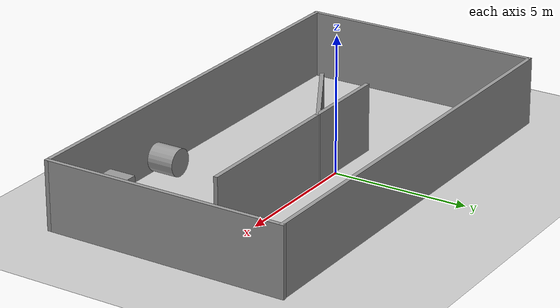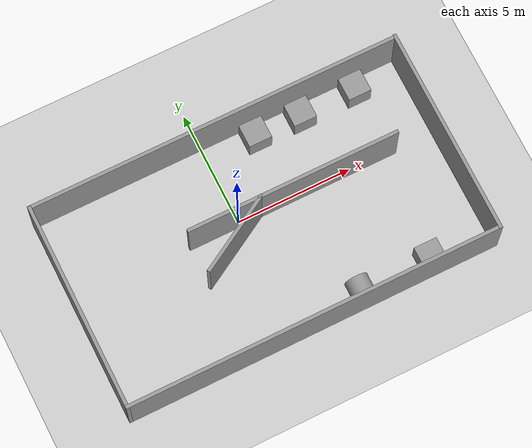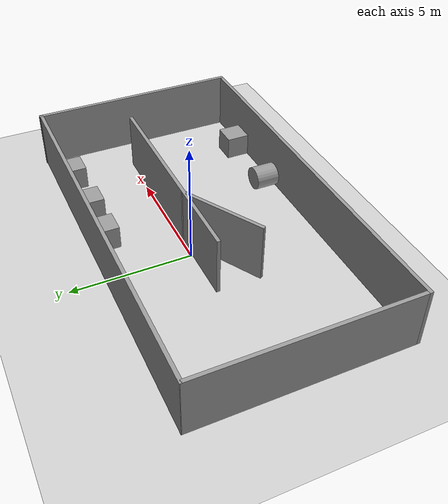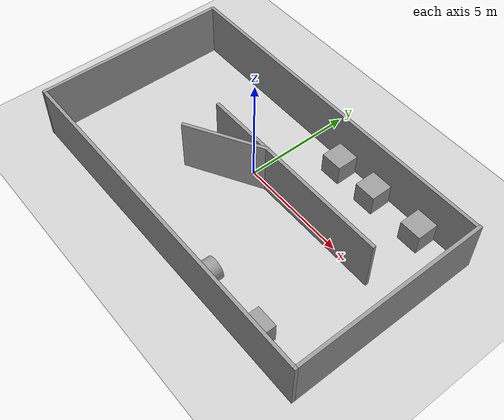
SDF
<sdf version="1.7">
 <world name="default">
  <light name="sun" type="directional">
   <pose>0 0 10 0 -0 0</pose>
   <diffuse>0.8 0.8 0.8 1</diffuse>
   <specular>0.2 0.2 0.2 1</specular>
   <attenuation>
    <range>1000</range>
    <constant>0.9</constant>
    <linear>0.01</linear>
    <quadratic>0.001</quadratic>
   </attenuation>
   <direction>-0.5 0.1 -0.9</direction>
   <spot><inner_angle>0</inner_angle><outer_angle>0</outer_angle><falloff>0</falloff></spot>
  </light>
  <model name="ground_plane">
   <static>1</static>
   <link name="link">
    <collision name="collision">
     <geometry><plane><normal>0 0 1</normal><size>100 100</size></plane></geometry>
     <surface><friction><ode><mu>100</mu><mu2>50</mu2></ode></friction></surface>
    </collision>
    <visual name="visual">
     <cast_shadows>0</cast_shadows>
     <geometry><plane><normal>0 0 1</normal><size>100 100</size></plane></geometry>
     <material>
      <script><uri>file://media/materials/scripts/gazebo.material</uri><name>Gazebo/Grey</name></script>
     </material>
    </visual>
   </link>
  </model>
  <gravity>0 0 -9.8</gravity>
  <magnetic_field>6e-06 2.3e-05 -4.2e-05</magnetic_field>
  <atmosphere type="adiabatic"/>
  <physics type="ode">
   <max_step_size>0.001</max_step_size>
   <real_time_factor>1</real_time_factor>
   <real_time_update_rate>1000</real_time_update_rate>
  </physics>
  <scene><ambient>0.4 0.4 0.4 1</ambient><background>0.7 0.7 0.7 1</background><shadows>1</shadows></scene>
  <audio><device>default</device></audio>
  <spherical_coordinates>
   <surface_model>EARTH_WGS84</surface_model>
   <latitude_deg>0</latitude_deg>
   <longitude_deg>0</longitude_deg>
   <elevation>0</elevation>
   <heading_deg>0</heading_deg>
  </spherical_coordinates>
  <model name="dee">
   <pose>0.699239 -0.953391 0 0 -0 0</pose>
   <link name="Wall_0">
    <collision name="Wall_0_Collision">
     <geometry><box><size>16.25 0.15 2.5</size></box></geometry>
     <pose>0 0 1.25 0 -0 0</pose>
    </collision>
    <visual name="Wall_0_Visual">
     <pose>0 0 1.25 0 -0 0</pose>
     <geometry><box><size>16.25 0.15 2.5</size></box></geometry>
     <material>
      <script><uri>file://media/materials/scripts/gazebo.material</uri><name>Gazebo/Grey</name></script>
      <ambient>1 1 1 1</ambient>
     </material>
     <meta><layer>0</layer></meta>
    </visual>
    <pose>0 4.42251 0 0 -0 0</pose>
   </link>
   <link name="Wall_1">
    <collision name="Wall_1_Collision">
     <geometry><box><size>9.04822 0.15 2.5</size></box></geometry>
     <pose>0 0 1.25 0 -0 0</pose>
    </collision>
    <visual name="Wall_1_Visual">
     <pose>0 0 1.25 0 -0 0</pose>
     <geometry><box><size>9.04822 0.15 2.5</size></box></geometry>
     <material>
      <script><uri>file://media/materials/scripts/gazebo.material</uri><name>Gazebo/Grey</name></script>
      <ambient>1 1 1 1</ambient>
     </material>
     <meta><layer>0</layer></meta>
    </visual>
    <pose>8.05 0 0 0 -0 -1.5708</pose>
   </link>
   <link name="Wall_2">
    <collision name="Wall_2_Collision">
     <geometry><box><size>16.25 0.15 2.5</size></box></geometry>
     <pose>0 0 1.25 0 -0 0</pose>
    </collision>
    <visual name="Wall_2_Visual">
     <pose>0 0 1.25 0 -0 0</pose>
     <geometry><box><size>16.25 0.15 2.5</size></box></geometry>
     <material>
      <script><uri>file://media/materials/scripts/gazebo.material</uri><name>Gazebo/Grey</name></script>
      <ambient>1 1 1 1</ambient>
     </material>
     <meta><layer>0</layer></meta>
    </visual>
    <pose>0 -4.44911 0 0 -0 3.14159</pose>
   </link>
   <link name="Wall_3">
    <collision name="Wall_3_Collision">
     <geometry><box><size>9 0.15 2.5</size></box></geometry>
     <pose>0 0 1.25 0 -0 0</pose>
    </collision>
    <visual name="Wall_3_Visual">
     <pose>0 0 1.25 0 -0 0</pose>
     <geometry><box><size>9 0.15 2.5</size></box></geometry>
     <material>
      <script><uri>file://media/materials/scripts/gazebo.material</uri><name>Gazebo/Grey</name></script>
      <ambient>1 1 1 1</ambient>
     </material>
     <meta><layer>0</layer></meta>
    </visual>
    <pose>-8.05 -0.024108 0 0 -0 1.5708</pose>
   </link>
   <link name="Wall_5">
    <collision name="Wall_5_Collision">
     <geometry><box><size>9.25 0.15 2.5</size></box></geometry>
     <pose>0 0 1.25 0 -0 0</pose>
    </collision>
    <visual name="Wall_5_Visual">
     <pose>0 0 1.25 0 -0 0</pose>
     <geometry><box><size>9.25 0.15 2.5</size></box></geometry>
     <material>
      <script><uri>file://media/materials/scripts/gazebo.material</uri><name>Gazebo/Grey</name></script>
      <ambient>1 1 1 1</ambient>
     </material>
     <meta><layer>0</layer></meta>
    </visual>
    <pose>1.67895 0.815214 0 0 -0 3.14159</pose>
   </link>
   <link name="Wall_7">
    <collision name="Wall_7_Collision">
     <geometry><box><size>3.75 0.15 2.5</size></box></geometry>
     <pose>0 0 1.25 0 -0 0</pose>
    </collision>
    <visual name="Wall_7_Visual">
     <pose>0 0 1.25 0 -0 0</pose>
     <geometry><box><size>3.75 0.15 2.5</size></box></geometry>
     <material>
      <script><uri>file://media/materials/scripts/gazebo.material</uri><name>Gazebo/Grey</name></script>
      <ambient>1 1 1 1</ambient>
     </material>
     <meta><layer>0</layer></meta>
    </visual>
    <pose>-1.31029 -0.084786 0 0 -0 -2.61799</pose>
   </link>
   <static>1</static>
  </model>
  <model name="unit_box">
   <pose>6.66097 2.84802 0.499995 0 1e-05 0</pose>
   <link name="link">
    <inertial>
     <mass>1</mass>
     <inertia>
      <ixx>0.166667</ixx>
      <ixy>0</ixy>
      <ixz>0</ixz>
      <iyy>0.166667</iyy>
      <iyz>0</iyz>
      <izz>0.166667</izz>
     </inertia>
    </inertial>
    <collision name="collision"><geometry><box><size>1 1 1</size></box></geometry></collision>
    <visual name="visual">
     <geometry><box><size>1 1 1</size></box></geometry>
     <material>
      <script><name>Gazebo/Grey</name><uri>file://media/materials/scripts/gazebo.material</uri></script>
     </material>
    </visual>
   </link>
  </model>
  <model name="unit_box_0">
   <pose>4.18684 2.81982 0.499995 -1e-05 0 0</pose>
   <link name="link">
    <inertial>
     <mass>1</mass>
     <inertia>
      <ixx>0.166667</ixx>
      <ixy>0</ixy>
      <ixz>0</ixz>
      <iyy>0.166667</iyy>
      <iyz>0</iyz>
      <izz>0.166667</izz>
     </inertia>
    </inertial>
    <collision name="collision"><geometry><box><size>1 1 1</size></box></geometry></collision>
    <visual name="visual">
     <geometry><box><size>1 1 1</size></box></geometry>
     <material>
      <script><name>Gazebo/Grey</name><uri>file://media/materials/scripts/gazebo.material</uri></script>
     </material>
    </visual>
   </link>
  </model>
  <model name="unit_box_1">
   <pose>2.17801 2.84571 0.499995 0 1e-05 0</pose>
   <link name="link">
    <inertial>
     <mass>1</mass>
     <inertia>
      <ixx>0.166667</ixx>
      <ixy>0</ixy>
      <ixz>0</ixz>
      <iyy>0.166667</iyy>
      <iyz>0</iyz>
      <izz>0.166667</izz>
     </inertia>
    </inertial>
    <collision name="collision"><geometry><box><size>1 1 1</size></box></geometry></collision>
    <visual name="visual">
     <geometry><box><size>1 1 1</size></box></geometry>
     <material>
      <script><name>Gazebo/Grey</name><uri>file://media/materials/scripts/gazebo.material</uri></script>
     </material>
    </visual>
   </link>
  </model>
  <model name="unit_box_2">
   <pose>6.10722 -4.82751 0.5 -0 -0 -2e-06</pose>
   <link name="link">
    <inertial>
     <mass>1</mass>
     <inertia>
      <ixx>0.166667</ixx>
      <ixy>0</ixy>
      <ixz>0</ixz>
      <iyy>0.166667</iyy>
      <iyz>0</iyz>
      <izz>0.166667</izz>
     </inertia>
    </inertial>
    <collision name="collision"><geometry><box><size>1 1 1</size></box></geometry></collision>
    <visual name="visual">
     <geometry><box><size>1 1 1</size></box></geometry>
     <material>
      <script><name>Gazebo/Grey</name><uri>file://media/materials/scripts/gazebo.material</uri></script>
     </material>
    </visual>
   </link>
  </model>
  <model name="unit_cylinder">
   <pose>3.05248 -4.82013 0.5 1.5708 -4e-06 0</pose>
   <link name="link">
    <inertial>
     <mass>1</mass>
     <inertia><ixx>0.145833</ixx><ixy>0</ixy><ixz>0</ixz><iyy>0.145833</iyy><iyz>0</iyz><izz>0.125</izz></inertia>
    </inertial>
    <collision name="collision">
     <geometry><cylinder><radius>0.5</radius><length>1</length></cylinder></geometry>
    </collision>
    <visual name="visual">
     <geometry><cylinder><radius>0.5</radius><length>1</length></cylinder></geometry>
     <material>
      <script><name>Gazebo/Grey</name><uri>file://media/materials/scripts/gazebo.material</uri></script>
     </material>
    </visual>
   </link>
  </model>
 </world>
</sdf>
